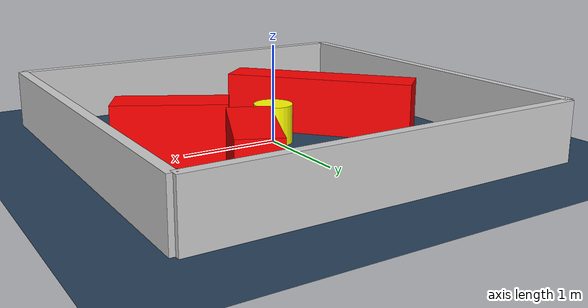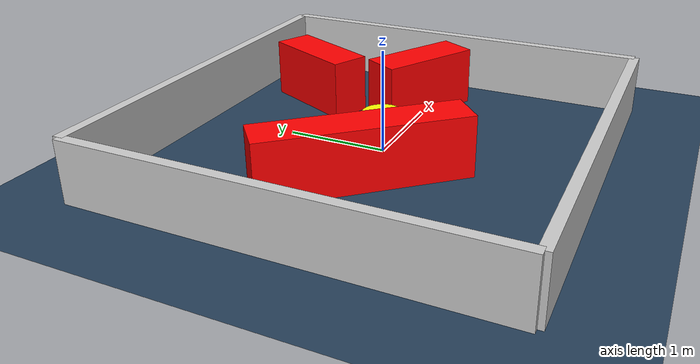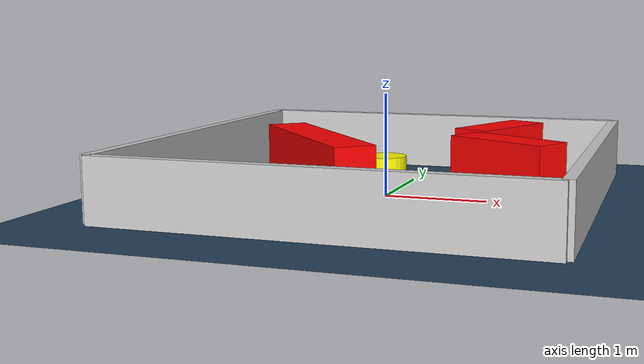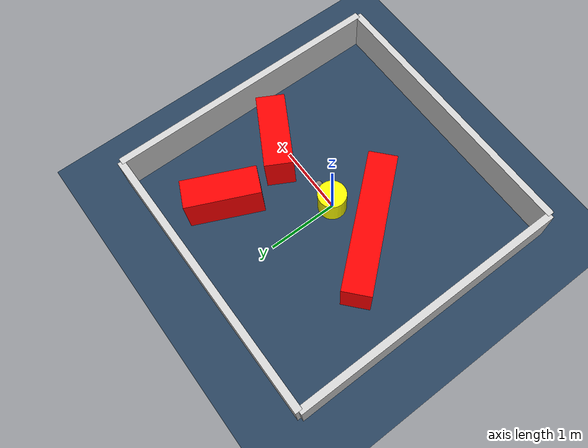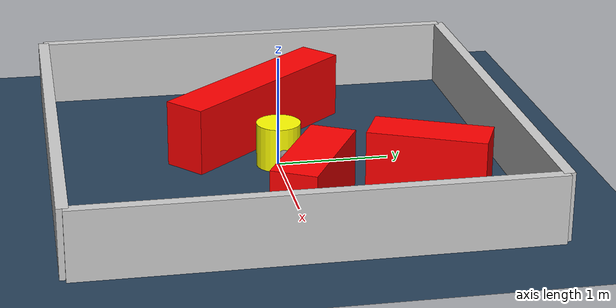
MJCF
<?xml version="1.0" ?>
<mujoco model="generated_environment">
  <option timestep="0.01" integrator="RK4" cone="elliptic"/>
  <default>
    <geom density="1"/>
  </default>
  <asset>
    <texture builtin="gradient" height="3072" rgb1="0.3 0.5 0.7" rgb2="0 0 0" type="skybox" width="512"/>
    <texture builtin="checker" height="300" mark="edge" markrgb="0.8 0.8 0.8" name="groundplane" rgb1="0.2 0.3 0.4" rgb2="0.1 0.2 0.3" type="2d" width="300"/>
    <material name="groundplane" reflectance="0.2" texrepeat="5 5" texture="groundplane" texuniform="true"/>
    <material name="robot" rgba="0.0 1.0 0.0 1"/>
  </asset>
  <worldbody>
    <light dir="0 0 -1" directional="true" pos="0 0 1.5"/>
    <geom condim="4" friction="1.0 0.005 0.001" material="groundplane" name="floor" size="0 0 0.05" type="plane"/>
    <body name="walls">
      <geom name="wall_1" condim="4" pos="-2.0 0.0 0.3" rgba="0.800000011920929 0.800000011920929 0.800000011920929 1.0" size="0.05 2.0 0.3" type="box"/>
      <geom name="wall_2" condim="4" pos="2.0 0.0 0.3" rgba="0.800000011920929 0.800000011920929 0.800000011920929 1.0" size="0.05 2.0 0.3" type="box"/>
      <geom name="wall_3" condim="4" pos="0.0 -2.0 0.3" rgba="0.800000011920929 0.800000011920929 0.800000011920929 1.0" size="2.0 0.05 0.3" type="box"/>
      <geom name="wall_4" condim="4" pos="0.0 2.0 0.3" rgba="0.800000011920929 0.800000011920929 0.800000011920929 1.0" size="2.0 0.05 0.3" type="box"/>
    </body>
    <body name="robot">
      <joint name="joint_x" type="slide" pos="0 0 0" axis="1 0 0"/>
      <joint name="joint_y" type="slide" pos="0 0 0" axis="0 1 0"/>
      <geom name="robot" type="sphere" pos="0.3 0.0 0.2" size="0.05" mass="5." friction="1.0 0.005 0.0001" condim="4" rgba="0.5 0.5 0.5 1.0"/>
      <site name="sensor_ball"/>
    </body>
    <body name="obstacle_movable_1">
      <geom name="obstacle_movable_1" condim="4" pos="0.0 0.0 0.2" euler="0 0 0.0" friction="1.0 0.005 0.001" rgba="1.0 1.0 0.0 1.0" size="0.2 0.2 0.0" type="cylinder" mass="0.1"/>
      <joint type="free"/>
    </body>
    <body name="obstacle_2_static">
      <geom name="obstacle_2_static" condim="4" pos="-0.6652279911869965 -0.1067813606697916 0.3" euler="0 0 311.36739490973235" friction="1.0 0.005 0.001" rgba="1 0 0 1" size="0.9854585462343122 0.2 0.3" type="box"/>
    </body>
    <body name="obstacle_3_static">
      <geom name="obstacle_3_static" condim="4" pos="1.1704399783199633 0.09425696165079733 0.3" euler="0 0 151.25236036696302" friction="1.0 0.005 0.001" rgba="1 0 0 1" size="0.5362238654268346 0.2 0.3" type="box"/>
    </body>
    <body name="obstacle_4_static">
      <geom name="obstacle_4_static" condim="4" pos="0.8973644991800855 1.1535113138670974 0.3" euler="0 0 245.5816707589081" friction="1.0 0.005 0.001" rgba="1 0 0 1" size="0.5149846916402139 0.2 0.3" type="box"/>
    </body>
  </worldbody>
  <actuator>
    <motor name="actuator_x" joint="joint_x" gear="1" ctrlrange="-1 1"/>
    <motor name="actuator_y" joint="joint_y" gear="1" ctrlrange="-1 1"/>
  </actuator>
</mujoco>
